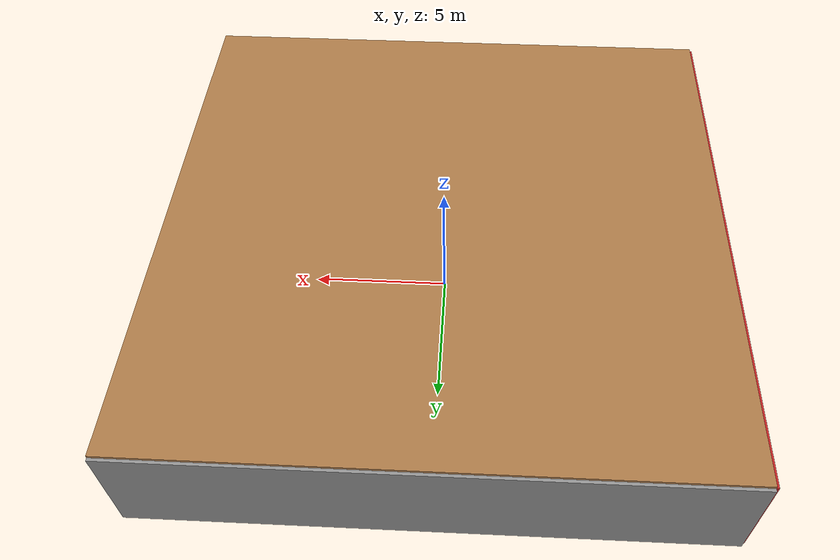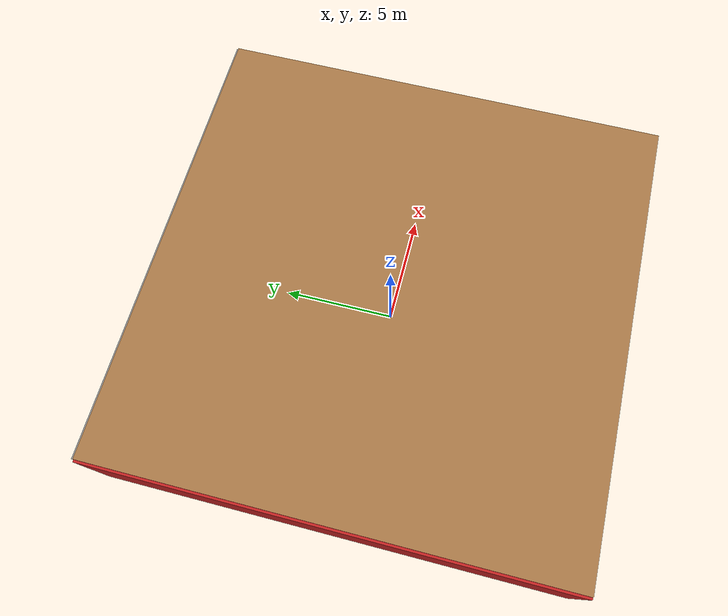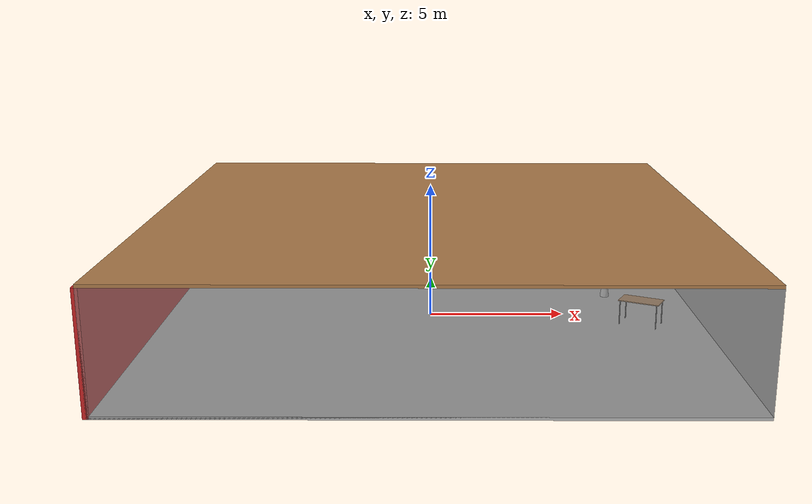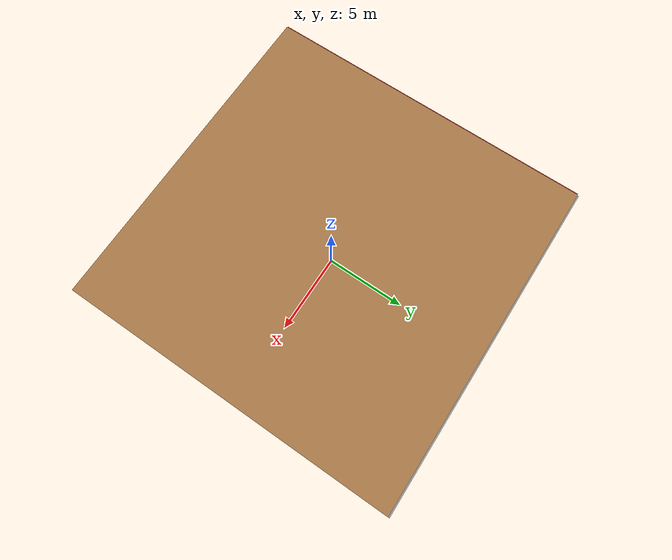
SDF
<sdf version="1.4">
 <world name="default">
  <physics type="ode">
   <max_step_size>0.001</max_step_size>
   <real_time_factor>1</real_time_factor>
   <real_time_update_rate>1000</real_time_update_rate>
   <gravity>0 0 -9.8</gravity>
  </physics>
  <scene><ambient>0.4 0.4 0.4 1</ambient><background>0.7 0.7 0.7 1</background><shadows>1</shadows></scene>
  <model name="Surrounding">
   <static>1</static>
   <link name="Ceiling">
    <collision name="Ceiling_Collision"><geometry><box><size>20 20 0.1</size></box></geometry></collision>
    <visual name="Ceiling_Visual">
     <geometry><box><size>20 20 0.1</size></box></geometry>
     <material>
      <script><uri>file://media/materials/scripts/gazebo.material</uri><name>Gazebo/WoodPallet</name></script>
     </material>
    </visual>
    <pose>0 0 4.05 0 0 0</pose>
   </link>
   <link name="Wall_South">
    <collision name="Wall_South_Collision">
     <geometry><box><size>20 0 4</size></box></geometry>
     <pose>0 0 2 0 -0 0</pose>
    </collision>
    <visual name="Wall_South_Visual">
     <pose>0 0 2 0 -0 0</pose>
     <geometry><box><size>20 0 4</size></box></geometry>
     <material>
      <script><uri>file://media/materials/scripts/gazebo.material</uri><name>Gazebo/GreyTransparent</name></script>
     </material>
    </visual>
    <velocity_decay><linear>0</linear><angular>0</angular></velocity_decay>
    <pose>0 -10 0 0 -0 0</pose>
   </link>
   <link name="Wall_East">
    <collision name="Wall_21_Collision">
     <geometry><box><size>20 0 4</size></box></geometry>
     <pose>0 0 2 0 -0 0</pose>
    </collision>
    <visual name="Wall_21_Visual">
     <pose>0 0 2 0 -0 0</pose>
     <geometry><box><size>20 0 4</size></box></geometry>
     <material>
      <script><uri>file://media/materials/scripts/gazebo.material</uri><name>Gazebo/LightOff</name></script>
     </material>
    </visual>
    <velocity_decay><linear>0</linear><angular>0</angular></velocity_decay>
    <pose>10 0 0 0 -0 1.5708</pose>
   </link>
   <link name="Wall_North">
    <collision name="Wall_22_Collision">
     <geometry><box><size>20 0.2 4</size></box></geometry>
     <pose>0 0 2 0 -0 0</pose>
    </collision>
    <visual name="Wall_22_Visual">
     <pose>0 0 2 0 -0 0</pose>
     <geometry><box><size>20 0.2 4</size></box></geometry>
     <material>
      <script><uri>file://media/materials/scripts/gazebo.material</uri><name>Gazebo/Grey</name></script>
     </material>
    </visual>
    <velocity_decay><linear>0</linear><angular>0</angular></velocity_decay>
    <pose>0 10 0 0 -0 0</pose>
   </link>
   <link name="Wall_West">
    <collision name="Wall_23_Collision">
     <geometry><box><size>20 0.2 4</size></box></geometry>
     <pose>0 0 2 0 -0 0</pose>
    </collision>
    <visual name="Wall_23_Visual">
     <pose>0 0 2 0 -0 0</pose>
     <geometry><box><size>20 0.2 4</size></box></geometry>
     <material>
      <script><uri>file://media/materials/scripts/gazebo.material</uri><name>Gazebo/Red</name></script>
     </material>
    </visual>
    <velocity_decay><linear>0</linear><angular>0</angular></velocity_decay>
    <pose>-10 0 0 0 0 -1.5708</pose>
   </link>
   <link name="Ground_link">
    <collision name="collision">
     <pose>0 0 .05 0 -0 0</pose>
     <geometry><box><size>20 20 0.1</size></box></geometry>
    </collision>
    <visual name="visual">
     <pose>0 0 .05 0 -0 0</pose>
     <geometry><box><size>20 20 0.1</size></box></geometry>
     <material>
      <script><uri>file://media/materials/scripts/gazebo.material</uri><name>Gazebo/Pioneer2Body</name></script>
     </material>
    </visual>
   </link>
   <static>1</static>
  </model>
  <spherical_coordinates>
   <surface_model>EARTH_WGS84</surface_model>
   <latitude_deg>0</latitude_deg>
   <longitude_deg>0</longitude_deg>
   <elevation>0</elevation>
   <heading_deg>0</heading_deg>
  </spherical_coordinates>
  <light name="lightball_0" type="diffuse">
   <diffuse>0.8 0.8 0.8 1</diffuse>
   <specular>0.2 0.2 0.2 1</specular>
   <attenuation>
    <range>100</range>
    <constant>0.7</constant>
    <linear>0.01</linear>
    <quadratic>0.001</quadratic>
   </attenuation>
   <direction>-0.5 0.1 -0.9</direction>
   <pose>3.92834314607 -1.73758449834 3.65543455526 0 0 0</pose>
  </light>
  <light name="lightball_1" type="diffuse">
   <diffuse>0.8 0.8 0.8 1</diffuse>
   <specular>0.2 0.2 0.2 1</specular>
   <attenuation>
    <range>100</range>
    <constant>0.7</constant>
    <linear>0.01</linear>
    <quadratic>0.001</quadratic>
   </attenuation>
   <direction>-0.5 0.1 -0.9</direction>
   <pose>-7.52759317469 -9.33041050873 0.675890151101 0 0 0</pose>
  </light>
  <light name="lightball_2" type="diffuse">
   <diffuse>0.8 0.8 0.8 1</diffuse>
   <specular>0.2 0.2 0.2 1</specular>
   <attenuation>
    <range>100</range>
    <constant>0.7</constant>
    <linear>0.01</linear>
    <quadratic>0.001</quadratic>
   </attenuation>
   <direction>-0.5 0.1 -0.9</direction>
   <pose>8.30256455939 -2.39073878094 3.05793053035 0 0 0</pose>
  </light>
  <light name="lightball_3" type="diffuse">
   <diffuse>0.8 0.8 0.8 1</diffuse>
   <specular>0.2 0.2 0.2 1</specular>
   <attenuation>
    <range>100</range>
    <constant>0.7</constant>
    <linear>0.01</linear>
    <quadratic>0.001</quadratic>
   </attenuation>
   <direction>-0.5 0.1 -0.9</direction>
   <pose>-5.96641409661 -1.39879216778 1.54664424995 0 0 0</pose>
  </light>
  <light name="lightball_4" type="diffuse">
   <diffuse>0.8 0.8 0.8 1</diffuse>
   <specular>0.2 0.2 0.2 1</specular>
   <attenuation>
    <range>100</range>
    <constant>0.7</constant>
    <linear>0.01</linear>
    <quadratic>0.001</quadratic>
   </attenuation>
   <direction>-0.5 0.1 -0.9</direction>
   <pose>-8.69163534849 8.99092417335 2.72396003863 0 0 0</pose>
  </light>
  <light name="lightball_5" type="diffuse">
   <diffuse>0.8 0.8 0.8 1</diffuse>
   <specular>0.2 0.2 0.2 1</specular>
   <attenuation>
    <range>100</range>
    <constant>0.7</constant>
    <linear>0.01</linear>
    <quadratic>0.001</quadratic>
   </attenuation>
   <direction>-0.5 0.1 -0.9</direction>
   <pose>6.36009685843 -2.67062772107 0.79814421017 0 0 0</pose>
  </light>
  <light name="lightball_6" type="diffuse">
   <diffuse>0.8 0.8 0.8 1</diffuse>
   <specular>0.2 0.2 0.2 1</specular>
   <attenuation>
    <range>100</range>
    <constant>0.7</constant>
    <linear>0.01</linear>
    <quadratic>0.001</quadratic>
   </attenuation>
   <direction>-0.5 0.1 -0.9</direction>
   <pose>-5.8050940616 2.39479809883 2.8963394134 0 0 0</pose>
  </light>
  <light name="lightball_7" type="diffuse">
   <diffuse>0.8 0.8 0.8 1</diffuse>
   <specular>0.2 0.2 0.2 1</specular>
   <attenuation>
    <range>100</range>
    <constant>0.7</constant>
    <linear>0.01</linear>
    <quadratic>0.001</quadratic>
   </attenuation>
   <direction>-0.5 0.1 -0.9</direction>
   <pose>-1.68093671204 0.391936313711 2.21997077763 0 0 0</pose>
  </light>
  <include><uri>model://table</uri><pose>1.57460374082 4.99207909582 0 0 0 1.82059839523</pose></include>
  <include>
   <uri>model://construction_cone</uri>
   <pose>3.84210798301 8.12660271937 0 0 0 1.09458448116</pose>
  </include>
  <include><uri>model://table</uri><pose>7.73272359164 -1.42117717625 0 0 0 2.66810260921</pose></include>
  <include>
   <uri>model://construction_cone</uri>
   <pose>6.95105957374 2.06451006862 0 0 0 0.694427873485</pose>
  </include>
 </world>
</sdf>

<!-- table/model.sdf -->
<sdf version="1.5">
  <model name="table">
    <static>true</static>
    <link name="link">
      <collision name="surface">
        <pose>0 0 1.0 0 0 0</pose>
        <geometry>
          <box>
            <size>1.5 0.8 0.03</size>
          </box>
        </geometry>
        <surface>
          <friction>
            <ode>
              <mu>0.6</mu>
              <mu2>0.6</mu2>
            </ode>
          </friction>
        </surface>
      </collision>
      <visual name="visual1">
        <pose>0 0 1.0 0 0 0</pose>
        <geometry>
          <box>
            <size>1.5 0.8 0.03</size>
          </box>
        </geometry>
        <material>
          <script>
            <uri>model://media/materials/scripts/gazebo.material</uri>
            <name>Gazebo/Wood</name>
          </script>
        </material>
      </visual>
      <collision name="front_left_leg">
        <pose>0.68 0.38 0.5 0 0 0</pose>
        <geometry>
          <cylinder>
            <radius>0.02</radius>
            <length>1.0</length>
          </cylinder>
        </geometry>
      </collision>
      <visual name="front_left_leg">
        <pose>0.68 0.38 0.5 0 0 0</pose>
        <geometry>
          <cylinder>
            <radius>0.02</radius>
            <length>1.0</length>
          </cylinder>
        </geometry>
        <material>
          <script>
            <uri>model://media/materials/scripts/gazebo.material</uri>
            <name>Gazebo/Grey</name>
          </script>
        </material>
      </visual>
      <collision name="front_right_leg">
        <pose>0.68 -0.38 0.5 0 0 0</pose>
        <geometry>
          <cylinder>
            <radius>0.02</radius>
            <length>1.0</length>
          </cylinder>
        </geometry>
      </collision>
      <visual name="front_right_leg">
        <pose>0.68 -0.38 0.5 0 0 0</pose>
        <geometry>
          <cylinder>
            <radius>0.02</radius>
            <length>1.0</length>
          </cylinder>
        </geometry>
        <material>
          <script>
            <uri>model://media/materials/scripts/gazebo.material</uri>
            <name>Gazebo/Grey</name>
          </script>
        </material>
      </visual>
      <collision name="back_right_leg">
        <pose>-0.68 -0.38 0.5 0 0 0</pose>
        <geometry>
          <cylinder>
            <radius>0.02</radius>
            <length>1.0</length>
          </cylinder>
        </geometry>
      </collision>
      <visual name="back_right_leg">
        <pose>-0.68 -0.38 0.5 0 0 0</pose>
        <geometry>
          <cylinder>
            <radius>0.02</radius>
            <length>1.0</length>
          </cylinder>
        </geometry>
        <material>
          <script>
            <uri>model://media/materials/scripts/gazebo.material</uri>
            <name>Gazebo/Grey</name>
          </script>
        </material>
      </visual>
      <collision name="back_left_leg">
        <pose>-0.68 0.38 0.5 0 0 0</pose>
        <geometry>
          <cylinder>
            <radius>0.02</radius>
            <length>1.0</length>
          </cylinder>
        </geometry>
      </collision>
      <visual name="back_left_leg">
        <pose>-0.68 0.38 0.5 0 0 0</pose>
        <geometry>
          <cylinder>
            <radius>0.02</radius>
            <length>1.0</length>
          </cylinder>
        </geometry>
        <material>
          <script>
            <uri>model://media/materials/scripts/gazebo.material</uri>
            <name>Gazebo/Grey</name>
          </script>
        </material>
      </visual>
    </link>
  </model>
</sdf>

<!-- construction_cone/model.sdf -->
<sdf version="1.5">
  <model name="Construction Cone">
    <link name="link">
      <collision name="collision">
        <geometry>
          <mesh>
            <scale>10 10 10</scale>
            <uri>file://isr-testbed/construction_cone/meshes/construction_cone.dae</uri>
          </mesh>
        </geometry>
      </collision>
      <visual name="visual">
        <geometry>
          <mesh>
            <scale>10 10 10</scale>
            <uri>file://isr-testbed/construction_cone/meshes/construction_cone.dae</uri>
          </mesh>
        </geometry>
      </visual>
    </link>
  </model>
</sdf>
